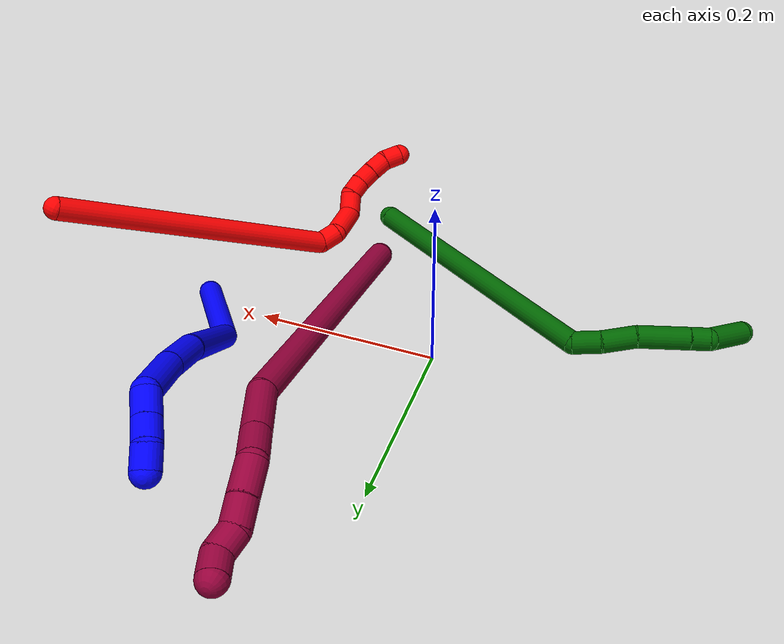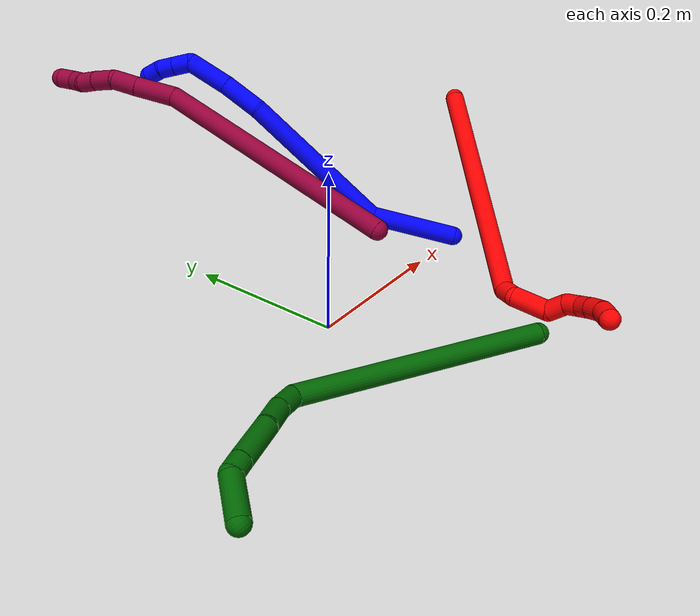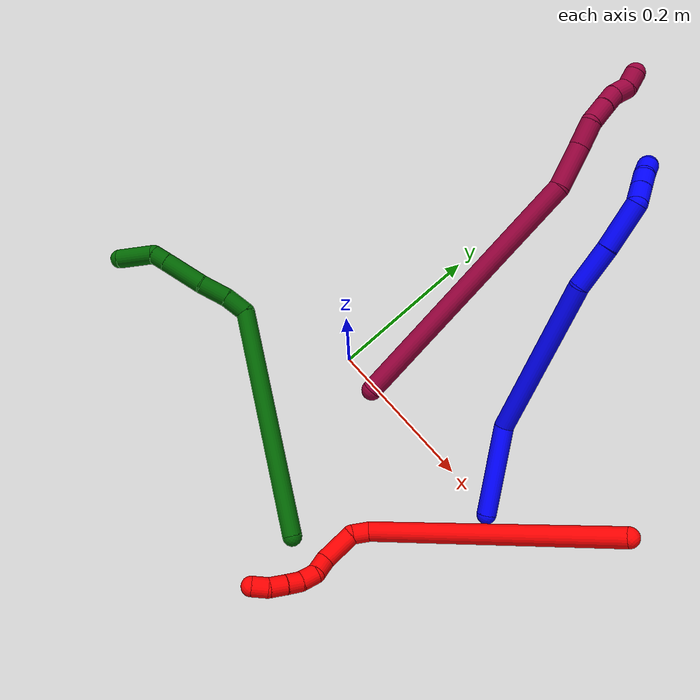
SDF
<sdf version="1.7">
 <world name="default">
  <model name="1">
   <static>0</static>
   <link name="1">
    <collision name="collision-cylinder-e_1_1_4">
     <pose>0.016277 -0.006592 0.05468 0.119972 0.287361 0.017378</pose>
     <geometry><cylinder><radius>0.0125</radius><length>0.114861</length></cylinder></geometry>
     <surface>
      <friction><ode><mu>1.16</mu><mu2>1.16</mu2><slip1>0</slip1><slip2>0</slip2></ode></friction>
      <contact><ode><kp>1e+06</kp><kd>1</kd><max_vel>0</max_vel><min_depth>0.001</min_depth></ode></contact>
     </surface>
    </collision>
    <visual name="visual-cylinder-e_1_1_4">
     <pose>0.016277 -0.006592 0.05468 0.119972 0.287361 0.017378</pose>
     <geometry><cylinder><radius>0.0125</radius><length>0.114861</length></cylinder></geometry>
     <material><ambient>0 0 1 1</ambient></material>
    </visual>
    <collision name="collision-cylinder-e_2_4_5">
     <pose>0.032983 0.017486 0.208892 -0.298903 0.004118 -0.00062</pose>
     <geometry><cylinder><radius>0.0125</radius><length>0.208302</length></cylinder></geometry>
     <surface>
      <friction><ode><mu>1.16</mu><mu2>1.16</mu2><slip1>0</slip1><slip2>0</slip2></ode></friction>
      <contact><ode><kp>1e+06</kp><kd>1</kd><max_vel>0</max_vel><min_depth>0.001</min_depth></ode></contact>
     </surface>
    </collision>
    <visual name="visual-cylinder-e_2_4_5">
     <pose>0.032983 0.017486 0.208892 -0.298903 0.004118 -0.00062</pose>
     <geometry><cylinder><radius>0.0125</radius><length>0.208302</length></cylinder></geometry>
     <material><ambient>0 0 1 1</ambient></material>
    </visual>
    <collision name="collision-cylinder-e_3_5_6">
     <pose>0.029452 0.050385 0.334721 -0.084577 -0.148932 0.006314</pose>
     <geometry><cylinder><radius>0.0125</radius><length>0.053375</length></cylinder></geometry>
     <surface>
      <friction><ode><mu>1.16</mu><mu2>1.16</mu2><slip1>0</slip1><slip2>0</slip2></ode></friction>
      <contact><ode><kp>1e+06</kp><kd>1</kd><max_vel>0</max_vel><min_depth>0.001</min_depth></ode></contact>
     </surface>
    </collision>
    <visual name="visual-cylinder-e_3_5_6">
     <pose>0.029452 0.050385 0.334721 -0.084577 -0.148932 0.006314</pose>
     <geometry><cylinder><radius>0.0125</radius><length>0.053375</length></cylinder></geometry>
     <material><ambient>0 0 1 1</ambient></material>
    </visual>
    <collision name="collision-cylinder-e_4_6_7">
     <pose>0.022824 0.053325 0.389964 -0.02454 -0.09191 0.001129</pose>
     <geometry><cylinder><radius>0.0125</radius><length>0.058152</length></cylinder></geometry>
     <surface>
      <friction><ode><mu>1.16</mu><mu2>1.16</mu2><slip1>0</slip1><slip2>0</slip2></ode></friction>
      <contact><ode><kp>1e+06</kp><kd>1</kd><max_vel>0</max_vel><min_depth>0.001</min_depth></ode></contact>
     </surface>
    </collision>
    <visual name="visual-cylinder-e_4_6_7">
     <pose>0.022824 0.053325 0.389964 -0.02454 -0.09191 0.001129</pose>
     <geometry><cylinder><radius>0.0125</radius><length>0.058152</length></cylinder></geometry>
     <material><ambient>0 0 1 1</ambient></material>
    </visual>
    <collision name="collision-cylinder-e_5_7_8">
     <pose>0.022077 0.046726 0.428052 0.674352 0.16277 0.057172</pose>
     <geometry><cylinder><radius>0.0125</radius><length>0.023727</length></cylinder></geometry>
     <surface>
      <friction><ode><mu>1.16</mu><mu2>1.16</mu2><slip1>0</slip1><slip2>0</slip2></ode></friction>
      <contact><ode><kp>1e+06</kp><kd>1</kd><max_vel>0</max_vel><min_depth>0.001</min_depth></ode></contact>
     </surface>
    </collision>
    <visual name="visual-cylinder-e_5_7_8">
     <pose>0.022077 0.046726 0.428052 0.674352 0.16277 0.057172</pose>
     <geometry><cylinder><radius>0.0125</radius><length>0.023727</length></cylinder></geometry>
     <material><ambient>0 0 1 1</ambient></material>
    </visual>
    <collision name="collision-cylinder-e_6_8_9">
     <pose>0.025662 0.033065 0.445136 0.67476 0.16208 0.056966</pose>
     <geometry><cylinder><radius>0.0125</radius><length>0.020605</length></cylinder></geometry>
     <surface>
      <friction><ode><mu>1.16</mu><mu2>1.16</mu2><slip1>0</slip1><slip2>0</slip2></ode></friction>
      <contact><ode><kp>1e+06</kp><kd>1</kd><max_vel>0</max_vel><min_depth>0.001</min_depth></ode></contact>
     </surface>
    </collision>
    <visual name="visual-cylinder-e_6_8_9">
     <pose>0.025662 0.033065 0.445136 0.67476 0.16208 0.056966</pose>
     <geometry><cylinder><radius>0.0125</radius><length>0.020605</length></cylinder></geometry>
     <material><ambient>0 0 1 1</ambient></material>
    </visual>
    <collision name="collision-cylinder-e_7_9_2">
     <pose>0.027826 0.018215 0.459203 0.946038 0.047813 0.024473</pose>
     <geometry><cylinder><radius>0.0125</radius><length>0.020979</length></cylinder></geometry>
     <surface>
      <friction><ode><mu>1.16</mu><mu2>1.16</mu2><slip1>0</slip1><slip2>0</slip2></ode></friction>
      <contact><ode><kp>1e+06</kp><kd>1</kd><max_vel>0</max_vel><min_depth>0.001</min_depth></ode></contact>
     </surface>
    </collision>
    <visual name="visual-cylinder-e_7_9_2">
     <pose>0.027826 0.018215 0.459203 0.946038 0.047813 0.024473</pose>
     <geometry><cylinder><radius>0.0125</radius><length>0.020979</length></cylinder></geometry>
     <material><ambient>0 0 1 1</ambient></material>
    </visual>
    <collision name="collision-sphere-2">
     <pose>0.028328 0.009717 0.465331 0 -0 0</pose>
     <geometry><sphere><radius>0.0125</radius></sphere></geometry>
     <surface>
      <friction><ode><mu>1.16</mu><mu2>1.16</mu2><slip1>0</slip1><slip2>0</slip2></ode></friction>
      <contact><ode><kp>1e+06</kp><kd>1</kd><max_vel>0</max_vel><min_depth>0.001</min_depth></ode></contact>
     </surface>
    </collision>
    <visual name="visual-sphere-2">
     <pose>0.028328 0.009717 0.465331 0 -0 0</pose>
     <geometry><sphere><radius>0.0125</radius></sphere></geometry>
     <material><ambient>0 0 1 1</ambient></material>
    </visual>
    <collision name="collision-sphere-9">
     <pose>0.027325 0.026713 0.453075 0 -0 0</pose>
     <geometry><sphere><radius>0.0125</radius></sphere></geometry>
     <surface>
      <friction><ode><mu>1.16</mu><mu2>1.16</mu2><slip1>0</slip1><slip2>0</slip2></ode></friction>
      <contact><ode><kp>1e+06</kp><kd>1</kd><max_vel>0</max_vel><min_depth>0.001</min_depth></ode></contact>
     </surface>
    </collision>
    <visual name="visual-sphere-9">
     <pose>0.027325 0.026713 0.453075 0 -0 0</pose>
     <geometry><sphere><radius>0.0125</radius></sphere></geometry>
     <material><ambient>0 0 1 1</ambient></material>
    </visual>
    <collision name="collision-sphere-4">
     <pose>0.032554 -0.013183 0.10936 0 -0 0</pose>
     <geometry><sphere><radius>0.0125</radius></sphere></geometry>
     <surface>
      <friction><ode><mu>1.16</mu><mu2>1.16</mu2><slip1>0</slip1><slip2>0</slip2></ode></friction>
      <contact><ode><kp>1e+06</kp><kd>1</kd><max_vel>0</max_vel><min_depth>0.001</min_depth></ode></contact>
     </surface>
    </collision>
    <visual name="visual-sphere-4">
     <pose>0.032554 -0.013183 0.10936 0 -0 0</pose>
     <geometry><sphere><radius>0.0125</radius></sphere></geometry>
     <material><ambient>0 0 1 1</ambient></material>
    </visual>
    <collision name="collision-sphere-1">
     <geometry><sphere><radius>0.0125</radius></sphere></geometry>
     <surface>
      <friction><ode><mu>1.16</mu><mu2>1.16</mu2><slip1>0</slip1><slip2>0</slip2></ode></friction>
      <contact><ode><kp>1e+06</kp><kd>1</kd><max_vel>0</max_vel><min_depth>0.001</min_depth></ode></contact>
     </surface>
    </collision>
    <visual name="visual-sphere-1">
     <geometry><sphere><radius>0.0125</radius></sphere></geometry>
     <material><ambient>0 0 1 1</ambient></material>
    </visual>
    <collision name="collision-sphere-8">
     <pose>0.024 0.039416 0.437196 0 -0 0</pose>
     <geometry><sphere><radius>0.0125</radius></sphere></geometry>
     <surface>
      <friction><ode><mu>1.16</mu><mu2>1.16</mu2><slip1>0</slip1><slip2>0</slip2></ode></friction>
      <contact><ode><kp>1e+06</kp><kd>1</kd><max_vel>0</max_vel><min_depth>0.001</min_depth></ode></contact>
     </surface>
    </collision>
    <visual name="visual-sphere-8">
     <pose>0.024 0.039416 0.437196 0 -0 0</pose>
     <geometry><sphere><radius>0.0125</radius></sphere></geometry>
     <material><ambient>0 0 1 1</ambient></material>
    </visual>
    <collision name="collision-sphere-5">
     <pose>0.033412 0.048155 0.308424 0 -0 0</pose>
     <geometry><sphere><radius>0.0125</radius></sphere></geometry>
     <surface>
      <friction><ode><mu>1.16</mu><mu2>1.16</mu2><slip1>0</slip1><slip2>0</slip2></ode></friction>
      <contact><ode><kp>1e+06</kp><kd>1</kd><max_vel>0</max_vel><min_depth>0.001</min_depth></ode></contact>
     </surface>
    </collision>
    <visual name="visual-sphere-5">
     <pose>0.033412 0.048155 0.308424 0 -0 0</pose>
     <geometry><sphere><radius>0.0125</radius></sphere></geometry>
     <material><ambient>0 0 1 1</ambient></material>
    </visual>
    <collision name="collision-sphere-6">
     <pose>0.025492 0.052614 0.361019 0 -0 0</pose>
     <geometry><sphere><radius>0.0125</radius></sphere></geometry>
     <surface>
      <friction><ode><mu>1.16</mu><mu2>1.16</mu2><slip1>0</slip1><slip2>0</slip2></ode></friction>
      <contact><ode><kp>1e+06</kp><kd>1</kd><max_vel>0</max_vel><min_depth>0.001</min_depth></ode></contact>
     </surface>
    </collision>
    <visual name="visual-sphere-6">
     <pose>0.025492 0.052614 0.361019 0 -0 0</pose>
     <geometry><sphere><radius>0.0125</radius></sphere></geometry>
     <material><ambient>0 0 1 1</ambient></material>
    </visual>
    <collision name="collision-sphere-7">
     <pose>0.020155 0.054035 0.418908 0 -0 0</pose>
     <geometry><sphere><radius>0.0125</radius></sphere></geometry>
     <surface>
      <friction><ode><mu>1.16</mu><mu2>1.16</mu2><slip1>0</slip1><slip2>0</slip2></ode></friction>
      <contact><ode><kp>1e+06</kp><kd>1</kd><max_vel>0</max_vel><min_depth>0.001</min_depth></ode></contact>
     </surface>
    </collision>
    <visual name="visual-sphere-7">
     <pose>0.020155 0.054035 0.418908 0 -0 0</pose>
     <geometry><sphere><radius>0.0125</radius></sphere></geometry>
     <material><ambient>0 0 1 1</ambient></material>
    </visual>
    <inertial>
     <pose>0.026551 0.021695 0.238595 0 -0 0</pose>
     <mass>0.5</mass>
     <inertia>
      <ixx>0.000929</ixx>
      <ixy>0</ixy>
      <ixz>0</ixz>
      <iyy>0.000897</iyy>
      <iyz>0</iyz>
      <izz>-0.000208</izz>
     </inertia>
    </inertial>
   </link>
   <pose>0.269686 -0.006259 0.011496 1.16408 0.038707 -2.80689</pose>
  </model>
  <model name="2">
   <static>0</static>
   <link name="2">
    <collision name="collision-cylinder-e_1_1_4">
     <pose>-0.065043 -0.096886 0.110472 0.719974 -0.416729 -0.158827</pose>
     <geometry><cylinder><radius>0.0125</radius><length>0.321382</length></cylinder></geometry>
     <surface>
      <friction><ode><mu>1.16</mu><mu2>1.16</mu2><slip1>0</slip1><slip2>0</slip2></ode></friction>
      <contact><ode><kp>1e+06</kp><kd>1</kd><max_vel>0</max_vel><min_depth>0.001</min_depth></ode></contact>
     </surface>
    </collision>
    <visual name="visual-cylinder-e_1_1_4">
     <pose>-0.065043 -0.096886 0.110472 0.719974 -0.416729 -0.158827</pose>
     <geometry><cylinder><radius>0.0125</radius><length>0.321382</length></cylinder></geometry>
     <material><ambient>1 0 0 1</ambient></material>
    </visual>
    <collision name="collision-cylinder-e_2_4_5">
     <pose>-0.128836 -0.20432 0.225887 1.13253 0.106978 0.068046</pose>
     <geometry><cylinder><radius>0.0125</radius><length>0.023429</length></cylinder></geometry>
     <surface>
      <friction><ode><mu>1.16</mu><mu2>1.16</mu2><slip1>0</slip1><slip2>0</slip2></ode></friction>
      <contact><ode><kp>1e+06</kp><kd>1</kd><max_vel>0</max_vel><min_depth>0.001</min_depth></ode></contact>
     </surface>
    </collision>
    <visual name="visual-cylinder-e_2_4_5">
     <pose>-0.128836 -0.20432 0.225887 1.13253 0.106978 0.068046</pose>
     <geometry><cylinder><radius>0.0125</radius><length>0.023429</length></cylinder></geometry>
     <material><ambient>1 0 0 1</ambient></material>
    </visual>
    <collision name="collision-cylinder-e_3_5_6">
     <pose>-0.134092 -0.236739 0.229591 1.62739 -0.288748 -0.305318</pose>
     <geometry><cylinder><radius>0.0125</radius><length>0.045707</length></cylinder></geometry>
     <surface>
      <friction><ode><mu>1.16</mu><mu2>1.16</mu2><slip1>0</slip1><slip2>0</slip2></ode></friction>
      <contact><ode><kp>1e+06</kp><kd>1</kd><max_vel>0</max_vel><min_depth>0.001</min_depth></ode></contact>
     </surface>
    </collision>
    <visual name="visual-cylinder-e_3_5_6">
     <pose>-0.134092 -0.236739 0.229591 1.62739 -0.288748 -0.305318</pose>
     <geometry><cylinder><radius>0.0125</radius><length>0.045707</length></cylinder></geometry>
     <material><ambient>1 0 0 1</ambient></material>
    </visual>
    <collision name="collision-cylinder-e_4_6_7">
     <pose>-0.136195 -0.269199 0.223416 2.00701 0.360603 0.557291</pose>
     <geometry><cylinder><radius>0.0125</radius><length>0.024969</length></cylinder></geometry>
     <surface>
      <friction><ode><mu>1.16</mu><mu2>1.16</mu2><slip1>0</slip1><slip2>0</slip2></ode></friction>
      <contact><ode><kp>1e+06</kp><kd>1</kd><max_vel>0</max_vel><min_depth>0.001</min_depth></ode></contact>
     </surface>
    </collision>
    <visual name="visual-cylinder-e_4_6_7">
     <pose>-0.136195 -0.269199 0.223416 2.00701 0.360603 0.557291</pose>
     <geometry><cylinder><radius>0.0125</radius><length>0.024969</length></cylinder></geometry>
     <material><ambient>1 0 0 1</ambient></material>
    </visual>
    <collision name="collision-cylinder-e_5_7_8">
     <pose>-0.130058 -0.290327 0.21942 1.48183 0.162219 0.148446</pose>
     <geometry><cylinder><radius>0.0125</radius><length>0.021446</length></cylinder></geometry>
     <surface>
      <friction><ode><mu>1.16</mu><mu2>1.16</mu2><slip1>0</slip1><slip2>0</slip2></ode></friction>
      <contact><ode><kp>1e+06</kp><kd>1</kd><max_vel>0</max_vel><min_depth>0.001</min_depth></ode></contact>
     </surface>
    </collision>
    <visual name="visual-cylinder-e_5_7_8">
     <pose>-0.130058 -0.290327 0.21942 1.48183 0.162219 0.148446</pose>
     <geometry><cylinder><radius>0.0125</radius><length>0.021446</length></cylinder></geometry>
     <material><ambient>1 0 0 1</ambient></material>
    </visual>
    <collision name="collision-cylinder-e_6_8_9">
     <pose>-0.124856 -0.309848 0.223286 1.25583 0.35208 0.256835</pose>
     <geometry><cylinder><radius>0.0125</radius><length>0.020124</length></cylinder></geometry>
     <surface>
      <friction><ode><mu>1.16</mu><mu2>1.16</mu2><slip1>0</slip1><slip2>0</slip2></ode></friction>
      <contact><ode><kp>1e+06</kp><kd>1</kd><max_vel>0</max_vel><min_depth>0.001</min_depth></ode></contact>
     </surface>
    </collision>
    <visual name="visual-cylinder-e_6_8_9">
     <pose>-0.124856 -0.309848 0.223286 1.25583 0.35208 0.256835</pose>
     <geometry><cylinder><radius>0.0125</radius><length>0.020124</length></cylinder></geometry>
     <material><ambient>1 0 0 1</ambient></material>
    </visual>
    <collision name="collision-cylinder-e_7_9_10">
     <pose>-0.118125 -0.3286 0.22996 1.20457 0.302116 0.208539</pose>
     <geometry><cylinder><radius>0.0125</radius><length>0.021924</length></cylinder></geometry>
     <surface>
      <friction><ode><mu>1.16</mu><mu2>1.16</mu2><slip1>0</slip1><slip2>0</slip2></ode></friction>
      <contact><ode><kp>1e+06</kp><kd>1</kd><max_vel>0</max_vel><min_depth>0.001</min_depth></ode></contact>
     </surface>
    </collision>
    <visual name="visual-cylinder-e_7_9_10">
     <pose>-0.118125 -0.3286 0.22996 1.20457 0.302116 0.208539</pose>
     <geometry><cylinder><radius>0.0125</radius><length>0.021924</length></cylinder></geometry>
     <material><ambient>1 0 0 1</ambient></material>
    </visual>
    <collision name="collision-cylinder-e_8_10_2">
     <pose>-0.113046 -0.346379 0.240266 0.884601 0.173737 0.082441</pose>
     <geometry><cylinder><radius>0.0125</radius><length>0.021017</length></cylinder></geometry>
     <surface>
      <friction><ode><mu>1.16</mu><mu2>1.16</mu2><slip1>0</slip1><slip2>0</slip2></ode></friction>
      <contact><ode><kp>1e+06</kp><kd>1</kd><max_vel>0</max_vel><min_depth>0.001</min_depth></ode></contact>
     </surface>
    </collision>
    <visual name="visual-cylinder-e_8_10_2">
     <pose>-0.113046 -0.346379 0.240266 0.884601 0.173737 0.082441</pose>
     <geometry><cylinder><radius>0.0125</radius><length>0.021017</length></cylinder></geometry>
     <material><ambient>1 0 0 1</ambient></material>
    </visual>
    <collision name="collision-sphere-2">
     <pose>-0.11123 -0.354387 0.246824 0 -0 0</pose>
     <geometry><sphere><radius>0.0125</radius></sphere></geometry>
     <surface>
      <friction><ode><mu>1.16</mu><mu2>1.16</mu2><slip1>0</slip1><slip2>0</slip2></ode></friction>
      <contact><ode><kp>1e+06</kp><kd>1</kd><max_vel>0</max_vel><min_depth>0.001</min_depth></ode></contact>
     </surface>
    </collision>
    <visual name="visual-sphere-2">
     <pose>-0.11123 -0.354387 0.246824 0 -0 0</pose>
     <geometry><sphere><radius>0.0125</radius></sphere></geometry>
     <material><ambient>1 0 0 1</ambient></material>
    </visual>
    <collision name="collision-sphere-10">
     <pose>-0.114863 -0.338371 0.233708 0 -0 0</pose>
     <geometry><sphere><radius>0.0125</radius></sphere></geometry>
     <surface>
      <friction><ode><mu>1.16</mu><mu2>1.16</mu2><slip1>0</slip1><slip2>0</slip2></ode></friction>
      <contact><ode><kp>1e+06</kp><kd>1</kd><max_vel>0</max_vel><min_depth>0.001</min_depth></ode></contact>
     </surface>
    </collision>
    <visual name="visual-sphere-10">
     <pose>-0.114863 -0.338371 0.233708 0 -0 0</pose>
     <geometry><sphere><radius>0.0125</radius></sphere></geometry>
     <material><ambient>1 0 0 1</ambient></material>
    </visual>
    <collision name="collision-sphere-9">
     <pose>-0.121386 -0.318828 0.226212 0 -0 0</pose>
     <geometry><sphere><radius>0.0125</radius></sphere></geometry>
     <surface>
      <friction><ode><mu>1.16</mu><mu2>1.16</mu2><slip1>0</slip1><slip2>0</slip2></ode></friction>
      <contact><ode><kp>1e+06</kp><kd>1</kd><max_vel>0</max_vel><min_depth>0.001</min_depth></ode></contact>
     </surface>
    </collision>
    <visual name="visual-sphere-9">
     <pose>-0.121386 -0.318828 0.226212 0 -0 0</pose>
     <geometry><sphere><radius>0.0125</radius></sphere></geometry>
     <material><ambient>1 0 0 1</ambient></material>
    </visual>
    <collision name="collision-sphere-4">
     <pose>-0.130086 -0.193773 0.220944 0 -0 0</pose>
     <geometry><sphere><radius>0.0125</radius></sphere></geometry>
     <surface>
      <friction><ode><mu>1.16</mu><mu2>1.16</mu2><slip1>0</slip1><slip2>0</slip2></ode></friction>
      <contact><ode><kp>1e+06</kp><kd>1</kd><max_vel>0</max_vel><min_depth>0.001</min_depth></ode></contact>
     </surface>
    </collision>
    <visual name="visual-sphere-4">
     <pose>-0.130086 -0.193773 0.220944 0 -0 0</pose>
     <geometry><sphere><radius>0.0125</radius></sphere></geometry>
     <material><ambient>1 0 0 1</ambient></material>
    </visual>
    <collision name="collision-sphere-1">
     <geometry><sphere><radius>0.0125</radius></sphere></geometry>
     <surface>
      <friction><ode><mu>1.16</mu><mu2>1.16</mu2><slip1>0</slip1><slip2>0</slip2></ode></friction>
      <contact><ode><kp>1e+06</kp><kd>1</kd><max_vel>0</max_vel><min_depth>0.001</min_depth></ode></contact>
     </surface>
    </collision>
    <visual name="visual-sphere-1">
     <geometry><sphere><radius>0.0125</radius></sphere></geometry>
     <material><ambient>1 0 0 1</ambient></material>
    </visual>
    <collision name="collision-sphere-8">
     <pose>-0.128326 -0.300868 0.22036 0 -0 0</pose>
     <geometry><sphere><radius>0.0125</radius></sphere></geometry>
     <surface>
      <friction><ode><mu>1.16</mu><mu2>1.16</mu2><slip1>0</slip1><slip2>0</slip2></ode></friction>
      <contact><ode><kp>1e+06</kp><kd>1</kd><max_vel>0</max_vel><min_depth>0.001</min_depth></ode></contact>
     </surface>
    </collision>
    <visual name="visual-sphere-8">
     <pose>-0.128326 -0.300868 0.22036 0 -0 0</pose>
     <geometry><sphere><radius>0.0125</radius></sphere></geometry>
     <material><ambient>1 0 0 1</ambient></material>
    </visual>
    <collision name="collision-sphere-5">
     <pose>-0.127585 -0.214867 0.23083 0 -0 0</pose>
     <geometry><sphere><radius>0.0125</radius></sphere></geometry>
     <surface>
      <friction><ode><mu>1.16</mu><mu2>1.16</mu2><slip1>0</slip1><slip2>0</slip2></ode></friction>
      <contact><ode><kp>1e+06</kp><kd>1</kd><max_vel>0</max_vel><min_depth>0.001</min_depth></ode></contact>
     </surface>
    </collision>
    <visual name="visual-sphere-5">
     <pose>-0.127585 -0.214867 0.23083 0 -0 0</pose>
     <geometry><sphere><radius>0.0125</radius></sphere></geometry>
     <material><ambient>1 0 0 1</ambient></material>
    </visual>
    <collision name="collision-sphere-6">
     <pose>-0.1406 -0.258611 0.228351 0 -0 0</pose>
     <geometry><sphere><radius>0.0125</radius></sphere></geometry>
     <surface>
      <friction><ode><mu>1.16</mu><mu2>1.16</mu2><slip1>0</slip1><slip2>0</slip2></ode></friction>
      <contact><ode><kp>1e+06</kp><kd>1</kd><max_vel>0</max_vel><min_depth>0.001</min_depth></ode></contact>
     </surface>
    </collision>
    <visual name="visual-sphere-6">
     <pose>-0.1406 -0.258611 0.228351 0 -0 0</pose>
     <geometry><sphere><radius>0.0125</radius></sphere></geometry>
     <material><ambient>1 0 0 1</ambient></material>
    </visual>
    <collision name="collision-sphere-7">
     <pose>-0.13179 -0.279787 0.21848 0 -0 0</pose>
     <geometry><sphere><radius>0.0125</radius></sphere></geometry>
     <surface>
      <friction><ode><mu>1.16</mu><mu2>1.16</mu2><slip1>0</slip1><slip2>0</slip2></ode></friction>
      <contact><ode><kp>1e+06</kp><kd>1</kd><max_vel>0</max_vel><min_depth>0.001</min_depth></ode></contact>
     </surface>
    </collision>
    <visual name="visual-sphere-7">
     <pose>-0.13179 -0.279787 0.21848 0 -0 0</pose>
     <geometry><sphere><radius>0.0125</radius></sphere></geometry>
     <material><ambient>1 0 0 1</ambient></material>
    </visual>
    <inertial>
     <pose>-0.087439 -0.160826 0.152318 0 -0 0</pose>
     <mass>0.5</mass>
     <inertia>
      <ixx>0.002117</ixx>
      <ixy>0</ixy>
      <ixz>0</ixz>
      <iyy>0.001753</iyy>
      <iyz>0</iyz>
      <izz>0.002838</izz>
     </inertia>
    </inertial>
   </link>
   <pose>0.388083 0.073624 0.156271 -2.51512 -1.24956 2.4364</pose>
  </model>
  <model name="6">
   <static>0</static>
   <link name="6">
    <collision name="collision-cylinder-e_1_1_4">
     <pose>-0.126014 0.061031 -0.057641 -2.32763 -0.983135 1.78593</pose>
     <geometry><cylinder><radius>0.0125</radius><length>0.302832</length></cylinder></geometry>
     <surface>
      <friction><ode><mu>1.16</mu><mu2>1.16</mu2><slip1>0</slip1><slip2>0</slip2></ode></friction>
      <contact><ode><kp>1e+06</kp><kd>1</kd><max_vel>0</max_vel><min_depth>0.001</min_depth></ode></contact>
     </surface>
    </collision>
    <visual name="visual-cylinder-e_1_1_4">
     <pose>-0.126014 0.061031 -0.057641 -2.32763 -0.983135 1.78593</pose>
     <geometry><cylinder><radius>0.0125</radius><length>0.302832</length></cylinder></geometry>
     <material><ambient>0 0.392157 0.003922 1</ambient></material>
    </visual>
    <collision name="collision-cylinder-e_2_4_5">
     <pose>-0.259667 0.135775 -0.114987 -1.54933 -0.508095 0.497748</pose>
     <geometry><cylinder><radius>0.0125</radius><length>0.0314</length></cylinder></geometry>
     <surface>
      <friction><ode><mu>1.16</mu><mu2>1.16</mu2><slip1>0</slip1><slip2>0</slip2></ode></friction>
      <contact><ode><kp>1e+06</kp><kd>1</kd><max_vel>0</max_vel><min_depth>0.001</min_depth></ode></contact>
     </surface>
    </collision>
    <visual name="visual-cylinder-e_2_4_5">
     <pose>-0.259667 0.135775 -0.114987 -1.54933 -0.508095 0.497748</pose>
     <geometry><cylinder><radius>0.0125</radius><length>0.0314</length></cylinder></geometry>
     <material><ambient>0 0.392157 0.003922 1</ambient></material>
    </visual>
    <collision name="collision-cylinder-e_3_5_6">
     <pose>-0.27428 0.166636 -0.111917 -1.41035 -0.38182 0.32608</pose>
     <geometry><cylinder><radius>0.0125</radius><length>0.037437</length></cylinder></geometry>
     <surface>
      <friction><ode><mu>1.16</mu><mu2>1.16</mu2><slip1>0</slip1><slip2>0</slip2></ode></friction>
      <contact><ode><kp>1e+06</kp><kd>1</kd><max_vel>0</max_vel><min_depth>0.001</min_depth></ode></contact>
     </surface>
    </collision>
    <visual name="visual-cylinder-e_3_5_6">
     <pose>-0.27428 0.166636 -0.111917 -1.41035 -0.38182 0.32608</pose>
     <geometry><cylinder><radius>0.0125</radius><length>0.037437</length></cylinder></geometry>
     <material><ambient>0 0.392157 0.003922 1</ambient></material>
    </visual>
    <collision name="collision-cylinder-e_4_6_7">
     <pose>-0.29648 0.207119 -0.104257 -1.36443 -0.568318 0.465889</pose>
     <geometry><cylinder><radius>0.0125</radius><length>0.056577</length></cylinder></geometry>
     <surface>
      <friction><ode><mu>1.16</mu><mu2>1.16</mu2><slip1>0</slip1><slip2>0</slip2></ode></friction>
      <contact><ode><kp>1e+06</kp><kd>1</kd><max_vel>0</max_vel><min_depth>0.001</min_depth></ode></contact>
     </surface>
    </collision>
    <visual name="visual-cylinder-e_4_6_7">
     <pose>-0.29648 0.207119 -0.104257 -1.36443 -0.568318 0.465889</pose>
     <geometry><cylinder><radius>0.0125</radius><length>0.056577</length></cylinder></geometry>
     <material><ambient>0 0.392157 0.003922 1</ambient></material>
    </visual>
    <collision name="collision-cylinder-e_5_7_8">
     <pose>-0.317335 0.239012 -0.097365 -1.34051 -0.569667 0.456106</pose>
     <geometry><cylinder><radius>0.0125</radius><length>0.020875</length></cylinder></geometry>
     <surface>
      <friction><ode><mu>1.16</mu><mu2>1.16</mu2><slip1>0</slip1><slip2>0</slip2></ode></friction>
      <contact><ode><kp>1e+06</kp><kd>1</kd><max_vel>0</max_vel><min_depth>0.001</min_depth></ode></contact>
     </surface>
    </collision>
    <visual name="visual-cylinder-e_5_7_8">
     <pose>-0.317335 0.239012 -0.097365 -1.34051 -0.569667 0.456106</pose>
     <geometry><cylinder><radius>0.0125</radius><length>0.020875</length></cylinder></geometry>
     <material><ambient>0 0.392157 0.003922 1</ambient></material>
    </visual>
    <collision name="collision-cylinder-e_6_8_2">
     <pose>-0.328953 0.264098 -0.076972 -0.732227 -0.237654 0.091484</pose>
     <geometry><cylinder><radius>0.0125</radius><length>0.05088</length></cylinder></geometry>
     <surface>
      <friction><ode><mu>1.16</mu><mu2>1.16</mu2><slip1>0</slip1><slip2>0</slip2></ode></friction>
      <contact><ode><kp>1e+06</kp><kd>1</kd><max_vel>0</max_vel><min_depth>0.001</min_depth></ode></contact>
     </surface>
    </collision>
    <visual name="visual-cylinder-e_6_8_2">
     <pose>-0.328953 0.264098 -0.076972 -0.732227 -0.237654 0.091484</pose>
     <geometry><cylinder><radius>0.0125</radius><length>0.05088</length></cylinder></geometry>
     <material><ambient>0 0.392157 0.003922 1</ambient></material>
    </visual>
    <collision name="collision-sphere-2">
     <pose>-0.334942 0.280627 -0.058584 0 -0 0</pose>
     <geometry><sphere><radius>0.0125</radius></sphere></geometry>
     <surface>
      <friction><ode><mu>1.16</mu><mu2>1.16</mu2><slip1>0</slip1><slip2>0</slip2></ode></friction>
      <contact><ode><kp>1e+06</kp><kd>1</kd><max_vel>0</max_vel><min_depth>0.001</min_depth></ode></contact>
     </surface>
    </collision>
    <visual name="visual-sphere-2">
     <pose>-0.334942 0.280627 -0.058584 0 -0 0</pose>
     <geometry><sphere><radius>0.0125</radius></sphere></geometry>
     <material><ambient>0 0.392157 0.003922 1</ambient></material>
    </visual>
    <collision name="collision-sphere-4">
     <pose>-0.252029 0.122061 -0.115281 0 -0 0</pose>
     <geometry><sphere><radius>0.0125</radius></sphere></geometry>
     <surface>
      <friction><ode><mu>1.16</mu><mu2>1.16</mu2><slip1>0</slip1><slip2>0</slip2></ode></friction>
      <contact><ode><kp>1e+06</kp><kd>1</kd><max_vel>0</max_vel><min_depth>0.001</min_depth></ode></contact>
     </surface>
    </collision>
    <visual name="visual-sphere-4">
     <pose>-0.252029 0.122061 -0.115281 0 -0 0</pose>
     <geometry><sphere><radius>0.0125</radius></sphere></geometry>
     <material><ambient>0 0.392157 0.003922 1</ambient></material>
    </visual>
    <collision name="collision-sphere-1">
     <geometry><sphere><radius>0.0125</radius></sphere></geometry>
     <surface>
      <friction><ode><mu>1.16</mu><mu2>1.16</mu2><slip1>0</slip1><slip2>0</slip2></ode></friction>
      <contact><ode><kp>1e+06</kp><kd>1</kd><max_vel>0</max_vel><min_depth>0.001</min_depth></ode></contact>
     </surface>
    </collision>
    <visual name="visual-sphere-1">
     <geometry><sphere><radius>0.0125</radius></sphere></geometry>
     <material><ambient>0 0.392157 0.003922 1</ambient></material>
    </visual>
    <collision name="collision-sphere-8">
     <pose>-0.322964 0.247569 -0.095359 0 -0 0</pose>
     <geometry><sphere><radius>0.0125</radius></sphere></geometry>
     <surface>
      <friction><ode><mu>1.16</mu><mu2>1.16</mu2><slip1>0</slip1><slip2>0</slip2></ode></friction>
      <contact><ode><kp>1e+06</kp><kd>1</kd><max_vel>0</max_vel><min_depth>0.001</min_depth></ode></contact>
     </surface>
    </collision>
    <visual name="visual-sphere-8">
     <pose>-0.322964 0.247569 -0.095359 0 -0 0</pose>
     <geometry><sphere><radius>0.0125</radius></sphere></geometry>
     <material><ambient>0 0.392157 0.003922 1</ambient></material>
    </visual>
    <collision name="collision-sphere-5">
     <pose>-0.267305 0.149488 -0.114692 0 -0 0</pose>
     <geometry><sphere><radius>0.0125</radius></sphere></geometry>
     <surface>
      <friction><ode><mu>1.16</mu><mu2>1.16</mu2><slip1>0</slip1><slip2>0</slip2></ode></friction>
      <contact><ode><kp>1e+06</kp><kd>1</kd><max_vel>0</max_vel><min_depth>0.001</min_depth></ode></contact>
     </surface>
    </collision>
    <visual name="visual-sphere-5">
     <pose>-0.267305 0.149488 -0.114692 0 -0 0</pose>
     <geometry><sphere><radius>0.0125</radius></sphere></geometry>
     <material><ambient>0 0.392157 0.003922 1</ambient></material>
    </visual>
    <collision name="collision-sphere-6">
     <pose>-0.281255 0.183784 -0.109142 0 -0 0</pose>
     <geometry><sphere><radius>0.0125</radius></sphere></geometry>
     <surface>
      <friction><ode><mu>1.16</mu><mu2>1.16</mu2><slip1>0</slip1><slip2>0</slip2></ode></friction>
      <contact><ode><kp>1e+06</kp><kd>1</kd><max_vel>0</max_vel><min_depth>0.001</min_depth></ode></contact>
     </surface>
    </collision>
    <visual name="visual-sphere-6">
     <pose>-0.281255 0.183784 -0.109142 0 -0 0</pose>
     <geometry><sphere><radius>0.0125</radius></sphere></geometry>
     <material><ambient>0 0.392157 0.003922 1</ambient></material>
    </visual>
    <collision name="collision-sphere-7">
     <pose>-0.311705 0.230455 -0.099371 0 -0 0</pose>
     <geometry><sphere><radius>0.0125</radius></sphere></geometry>
     <surface>
      <friction><ode><mu>1.16</mu><mu2>1.16</mu2><slip1>0</slip1><slip2>0</slip2></ode></friction>
      <contact><ode><kp>1e+06</kp><kd>1</kd><max_vel>0</max_vel><min_depth>0.001</min_depth></ode></contact>
     </surface>
    </collision>
    <visual name="visual-sphere-7">
     <pose>-0.311705 0.230455 -0.099371 0 -0 0</pose>
     <geometry><sphere><radius>0.0125</radius></sphere></geometry>
     <material><ambient>0 0.392157 0.003922 1</ambient></material>
    </visual>
    <inertial>
     <pose>-0.193436 0.118257 -0.074206 0 -0 0</pose>
     <mass>0.5</mass>
     <inertia>
      <ixx>0.001005</ixx>
      <ixy>0</ixy>
      <ixz>0</ixz>
      <iyy>0.00303</iyy>
      <iyz>0</iyz>
      <izz>0.000978</izz>
     </inertia>
    </inertial>
   </link>
   <pose>0.125688 -0.2082 0.011703 2.47154 -0.581097 -0.585772</pose>
  </model>
  <model name="8">
   <static>0</static>
   <link name="8">
    <collision name="collision-cylinder-e_1_1_4">
     <pose>0.010494 0.014892 0.159375 -0.093167 0.065462 -0.003053</pose>
     <geometry><cylinder><radius>0.0125</radius><length>0.320826</length></cylinder></geometry>
     <surface>
      <friction><ode><mu>1.16</mu><mu2>1.16</mu2><slip1>0</slip1><slip2>0</slip2></ode></friction>
      <contact><ode><kp>1e+06</kp><kd>1</kd><max_vel>0</max_vel><min_depth>0.001</min_depth></ode></contact>
     </surface>
    </collision>
    <visual name="visual-cylinder-e_1_1_4">
     <pose>0.010494 0.014892 0.159375 -0.093167 0.065462 -0.003053</pose>
     <geometry><cylinder><radius>0.0125</radius><length>0.320826</length></cylinder></geometry>
     <material><ambient>0.584314 0 0.227451 1</ambient></material>
    </visual>
    <collision name="collision-cylinder-e_2_4_5">
     <pose>0.023475 0.023525 0.344043 0.242585 0.095188 0.011611</pose>
     <geometry><cylinder><radius>0.0125</radius><length>0.052346</length></cylinder></geometry>
     <surface>
      <friction><ode><mu>1.16</mu><mu2>1.16</mu2><slip1>0</slip1><slip2>0</slip2></ode></friction>
      <contact><ode><kp>1e+06</kp><kd>1</kd><max_vel>0</max_vel><min_depth>0.001</min_depth></ode></contact>
     </surface>
    </collision>
    <visual name="visual-cylinder-e_2_4_5">
     <pose>0.023475 0.023525 0.344043 0.242585 0.095188 0.011611</pose>
     <geometry><cylinder><radius>0.0125</radius><length>0.052346</length></cylinder></geometry>
     <material><ambient>0.584314 0 0.227451 1</ambient></material>
    </visual>
    <collision name="collision-cylinder-e_3_5_6">
     <pose>0.028175 0.013628 0.384551 0.234678 0.140466 0.016585</pose>
     <geometry><cylinder><radius>0.0125</radius><length>0.031603</length></cylinder></geometry>
     <surface>
      <friction><ode><mu>1.16</mu><mu2>1.16</mu2><slip1>0</slip1><slip2>0</slip2></ode></friction>
      <contact><ode><kp>1e+06</kp><kd>1</kd><max_vel>0</max_vel><min_depth>0.001</min_depth></ode></contact>
     </surface>
    </collision>
    <visual name="visual-cylinder-e_3_5_6">
     <pose>0.028175 0.013628 0.384551 0.234678 0.140466 0.016585</pose>
     <geometry><cylinder><radius>0.0125</radius><length>0.031603</length></cylinder></geometry>
     <material><ambient>0.584314 0 0.227451 1</ambient></material>
    </visual>
    <collision name="collision-cylinder-e_4_6_7">
     <pose>0.025906 0.005697 0.413492 0.303176 -0.302095 -0.046494</pose>
     <geometry><cylinder><radius>0.0125</radius><length>0.030123</length></cylinder></geometry>
     <surface>
      <friction><ode><mu>1.16</mu><mu2>1.16</mu2><slip1>0</slip1><slip2>0</slip2></ode></friction>
      <contact><ode><kp>1e+06</kp><kd>1</kd><max_vel>0</max_vel><min_depth>0.001</min_depth></ode></contact>
     </surface>
    </collision>
    <visual name="visual-cylinder-e_4_6_7">
     <pose>0.025906 0.005697 0.413492 0.303176 -0.302095 -0.046494</pose>
     <geometry><cylinder><radius>0.0125</radius><length>0.030123</length></cylinder></geometry>
     <material><ambient>0.584314 0 0.227451 1</ambient></material>
    </visual>
    <collision name="collision-cylinder-e_5_7_8">
     <pose>0.01731 -0.002314 0.437645 0.342389 -0.35578 -0.062147</pose>
     <geometry><cylinder><radius>0.0125</radius><length>0.023622</length></cylinder></geometry>
     <surface>
      <friction><ode><mu>1.16</mu><mu2>1.16</mu2><slip1>0</slip1><slip2>0</slip2></ode></friction>
      <contact><ode><kp>1e+06</kp><kd>1</kd><max_vel>0</max_vel><min_depth>0.001</min_depth></ode></contact>
     </surface>
    </collision>
    <visual name="visual-cylinder-e_5_7_8">
     <pose>0.01731 -0.002314 0.437645 0.342389 -0.35578 -0.062147</pose>
     <geometry><cylinder><radius>0.0125</radius><length>0.023622</length></cylinder></geometry>
     <material><ambient>0.584314 0 0.227451 1</ambient></material>
    </visual>
    <collision name="collision-cylinder-e_6_8_9">
     <pose>0.008889 -0.005275 0.457444 -0.080418 -0.429628 0.017555</pose>
     <geometry><cylinder><radius>0.0125</radius><length>0.020681</length></cylinder></geometry>
     <surface>
      <friction><ode><mu>1.16</mu><mu2>1.16</mu2><slip1>0</slip1><slip2>0</slip2></ode></friction>
      <contact><ode><kp>1e+06</kp><kd>1</kd><max_vel>0</max_vel><min_depth>0.001</min_depth></ode></contact>
     </surface>
    </collision>
    <visual name="visual-cylinder-e_6_8_9">
     <pose>0.008889 -0.005275 0.457444 -0.080418 -0.429628 0.017555</pose>
     <geometry><cylinder><radius>0.0125</radius><length>0.020681</length></cylinder></geometry>
     <material><ambient>0.584314 0 0.227451 1</ambient></material>
    </visual>
    <collision name="collision-cylinder-e_7_9_2">
     <pose>0.004458 -0.007302 0.476834 0.270778 -0.01189 -0.00162</pose>
     <geometry><cylinder><radius>0.0125</radius><length>0.020798</length></cylinder></geometry>
     <surface>
      <friction><ode><mu>1.16</mu><mu2>1.16</mu2><slip1>0</slip1><slip2>0</slip2></ode></friction>
      <contact><ode><kp>1e+06</kp><kd>1</kd><max_vel>0</max_vel><min_depth>0.001</min_depth></ode></contact>
     </surface>
    </collision>
    <visual name="visual-cylinder-e_7_9_2">
     <pose>0.004458 -0.007302 0.476834 0.270778 -0.01189 -0.00162</pose>
     <geometry><cylinder><radius>0.0125</radius><length>0.020798</length></cylinder></geometry>
     <material><ambient>0.584314 0 0.227451 1</ambient></material>
    </visual>
    <collision name="collision-sphere-2">
     <pose>0.004335 -0.010083 0.486853 0 -0 0</pose>
     <geometry><sphere><radius>0.0125</radius></sphere></geometry>
     <surface>
      <friction><ode><mu>1.16</mu><mu2>1.16</mu2><slip1>0</slip1><slip2>0</slip2></ode></friction>
      <contact><ode><kp>1e+06</kp><kd>1</kd><max_vel>0</max_vel><min_depth>0.001</min_depth></ode></contact>
     </surface>
    </collision>
    <visual name="visual-sphere-2">
     <pose>0.004335 -0.010083 0.486853 0 -0 0</pose>
     <geometry><sphere><radius>0.0125</radius></sphere></geometry>
     <material><ambient>0.584314 0 0.227451 1</ambient></material>
    </visual>
    <collision name="collision-sphere-9">
     <pose>0.004582 -0.00452 0.466814 0 -0 0</pose>
     <geometry><sphere><radius>0.0125</radius></sphere></geometry>
     <surface>
      <friction><ode><mu>1.16</mu><mu2>1.16</mu2><slip1>0</slip1><slip2>0</slip2></ode></friction>
      <contact><ode><kp>1e+06</kp><kd>1</kd><max_vel>0</max_vel><min_depth>0.001</min_depth></ode></contact>
     </surface>
    </collision>
    <visual name="visual-sphere-9">
     <pose>0.004582 -0.00452 0.466814 0 -0 0</pose>
     <geometry><sphere><radius>0.0125</radius></sphere></geometry>
     <material><ambient>0.584314 0 0.227451 1</ambient></material>
    </visual>
    <collision name="collision-sphere-4">
     <pose>0.020987 0.029783 0.318751 0 -0 0</pose>
     <geometry><sphere><radius>0.0125</radius></sphere></geometry>
     <surface>
      <friction><ode><mu>1.16</mu><mu2>1.16</mu2><slip1>0</slip1><slip2>0</slip2></ode></friction>
      <contact><ode><kp>1e+06</kp><kd>1</kd><max_vel>0</max_vel><min_depth>0.001</min_depth></ode></contact>
     </surface>
    </collision>
    <visual name="visual-sphere-4">
     <pose>0.020987 0.029783 0.318751 0 -0 0</pose>
     <geometry><sphere><radius>0.0125</radius></sphere></geometry>
     <material><ambient>0.584314 0 0.227451 1</ambient></material>
    </visual>
    <collision name="collision-sphere-1">
     <geometry><sphere><radius>0.0125</radius></sphere></geometry>
     <surface>
      <friction><ode><mu>1.16</mu><mu2>1.16</mu2><slip1>0</slip1><slip2>0</slip2></ode></friction>
      <contact><ode><kp>1e+06</kp><kd>1</kd><max_vel>0</max_vel><min_depth>0.001</min_depth></ode></contact>
     </surface>
    </collision>
    <visual name="visual-sphere-1">
     <geometry><sphere><radius>0.0125</radius></sphere></geometry>
     <material><ambient>0.584314 0 0.227451 1</ambient></material>
    </visual>
    <collision name="collision-sphere-8">
     <pose>0.013196 -0.006031 0.448073 0 -0 0</pose>
     <geometry><sphere><radius>0.0125</radius></sphere></geometry>
     <surface>
      <friction><ode><mu>1.16</mu><mu2>1.16</mu2><slip1>0</slip1><slip2>0</slip2></ode></friction>
      <contact><ode><kp>1e+06</kp><kd>1</kd><max_vel>0</max_vel><min_depth>0.001</min_depth></ode></contact>
     </surface>
    </collision>
    <visual name="visual-sphere-8">
     <pose>0.013196 -0.006031 0.448073 0 -0 0</pose>
     <geometry><sphere><radius>0.0125</radius></sphere></geometry>
     <material><ambient>0.584314 0 0.227451 1</ambient></material>
    </visual>
    <collision name="collision-sphere-5">
     <pose>0.025962 0.017266 0.369334 0 -0 0</pose>
     <geometry><sphere><radius>0.0125</radius></sphere></geometry>
     <surface>
      <friction><ode><mu>1.16</mu><mu2>1.16</mu2><slip1>0</slip1><slip2>0</slip2></ode></friction>
      <contact><ode><kp>1e+06</kp><kd>1</kd><max_vel>0</max_vel><min_depth>0.001</min_depth></ode></contact>
     </surface>
    </collision>
    <visual name="visual-sphere-5">
     <pose>0.025962 0.017266 0.369334 0 -0 0</pose>
     <geometry><sphere><radius>0.0125</radius></sphere></geometry>
     <material><ambient>0.584314 0 0.227451 1</ambient></material>
    </visual>
    <collision name="collision-sphere-6">
     <pose>0.030387 0.00999 0.399768 0 -0 0</pose>
     <geometry><sphere><radius>0.0125</radius></sphere></geometry>
     <surface>
      <friction><ode><mu>1.16</mu><mu2>1.16</mu2><slip1>0</slip1><slip2>0</slip2></ode></friction>
      <contact><ode><kp>1e+06</kp><kd>1</kd><max_vel>0</max_vel><min_depth>0.001</min_depth></ode></contact>
     </surface>
    </collision>
    <visual name="visual-sphere-6">
     <pose>0.030387 0.00999 0.399768 0 -0 0</pose>
     <geometry><sphere><radius>0.0125</radius></sphere></geometry>
     <material><ambient>0.584314 0 0.227451 1</ambient></material>
    </visual>
    <collision name="collision-sphere-7">
     <pose>0.021425 0.001404 0.427216 0 -0 0</pose>
     <geometry><sphere><radius>0.0125</radius></sphere></geometry>
     <surface>
      <friction><ode><mu>1.16</mu><mu2>1.16</mu2><slip1>0</slip1><slip2>0</slip2></ode></friction>
      <contact><ode><kp>1e+06</kp><kd>1</kd><max_vel>0</max_vel><min_depth>0.001</min_depth></ode></contact>
     </surface>
    </collision>
    <visual name="visual-sphere-7">
     <pose>0.021425 0.001404 0.427216 0 -0 0</pose>
     <geometry><sphere><radius>0.0125</radius></sphere></geometry>
     <material><ambient>0.584314 0 0.227451 1</ambient></material>
    </visual>
    <inertial>
     <pose>0.013903 0.012591 0.246931 0 -0 0</pose>
     <mass>0.5</mass>
     <inertia>
      <ixx>0.002776</ixx>
      <ixy>0</ixy>
      <ixz>0</ixz>
      <iyy>0.002769</iyy>
      <iyz>0</iyz>
      <izz>-0.000393</izz>
     </inertia>
    </inertial>
   </link>
   <pose>0.066474 -0.020695 0.110033 1.18316 -0.986764 -2.70634</pose>
  </model>
 </world>
</sdf>
